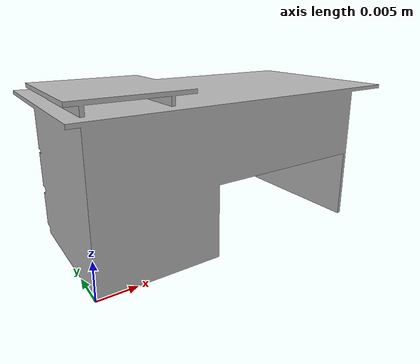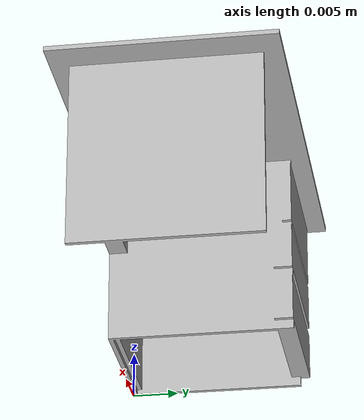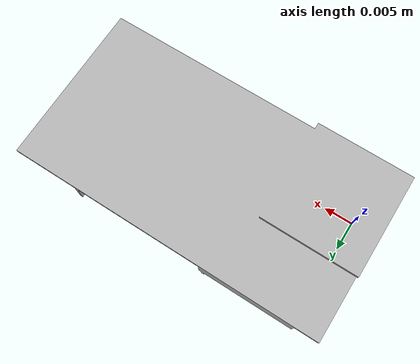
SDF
<?xml version="1.0"?>
<sdf version="1.6">
  <model name="table_1">
    <static>true</static>
    <link name="link">
      <visual name="visual">
        <geometry>
          <mesh>
            <uri>model://table_1/meshes/table_1.stl</uri>
            <scale>0.001 0.001 0.001</scale>
          </mesh>
        </geometry>
      </visual>
      <collision name="collision">
        <geometry>
          <mesh>
            <uri>model://table_1/meshes/table_1.stl</uri>
            <scale>0.001 0.001 0.001</scale>
          </mesh>
        </geometry>
      </collision>
    </link>
  </model>
</sdf>
